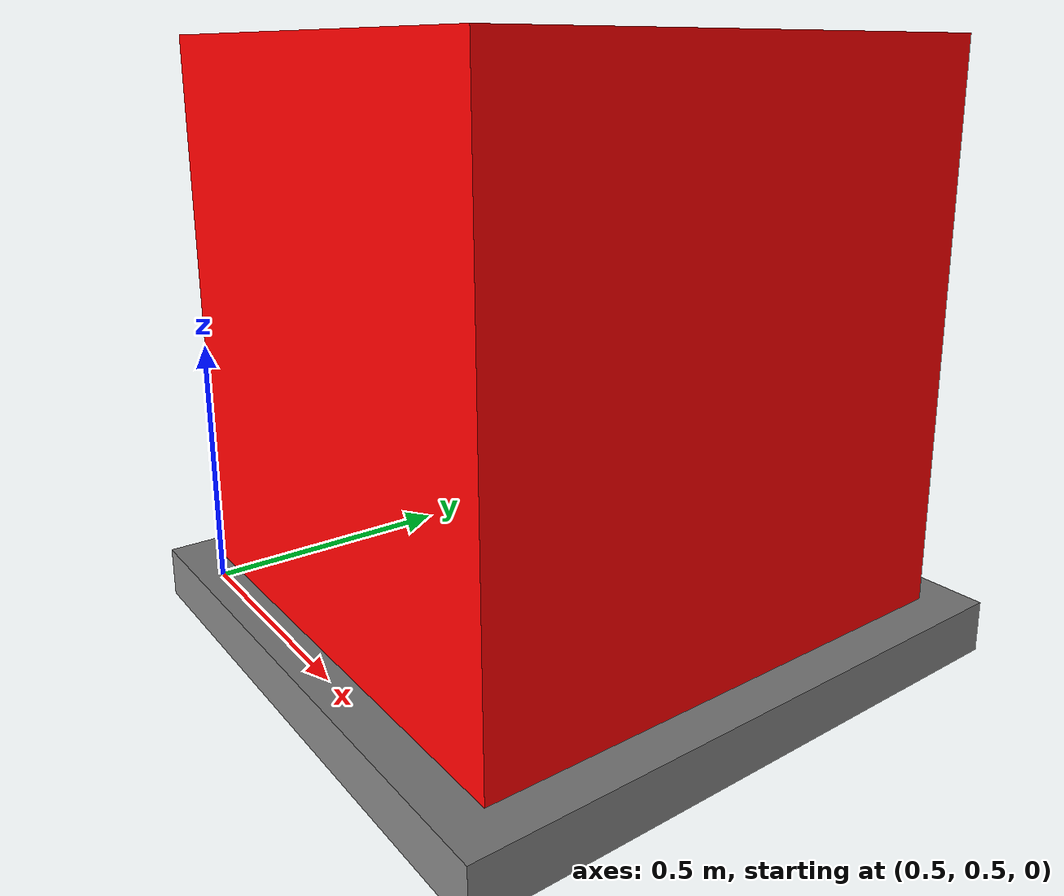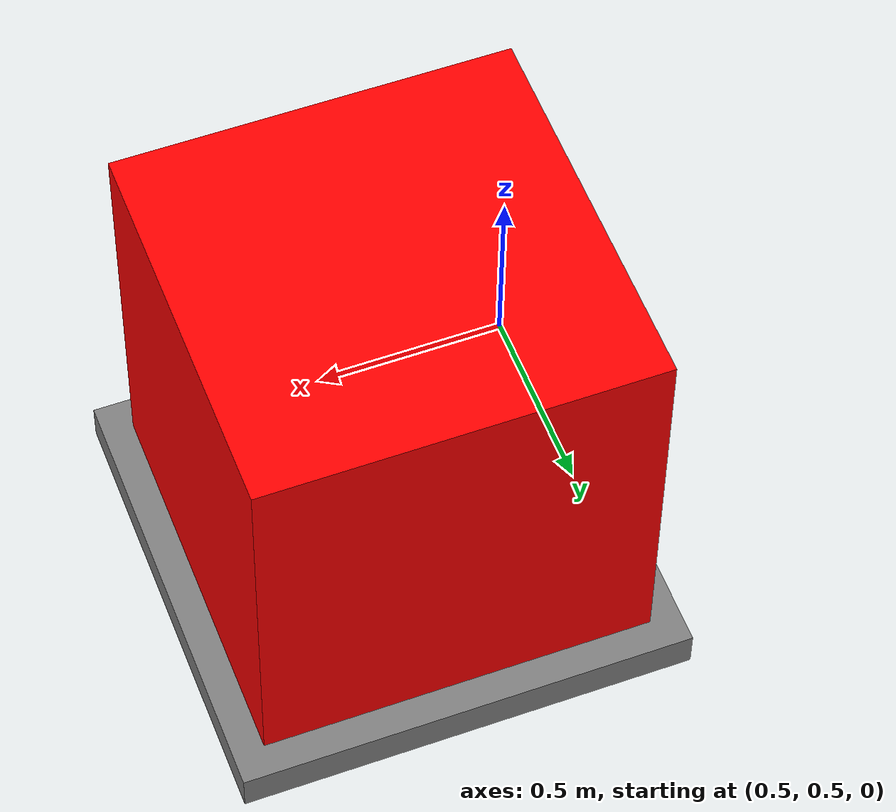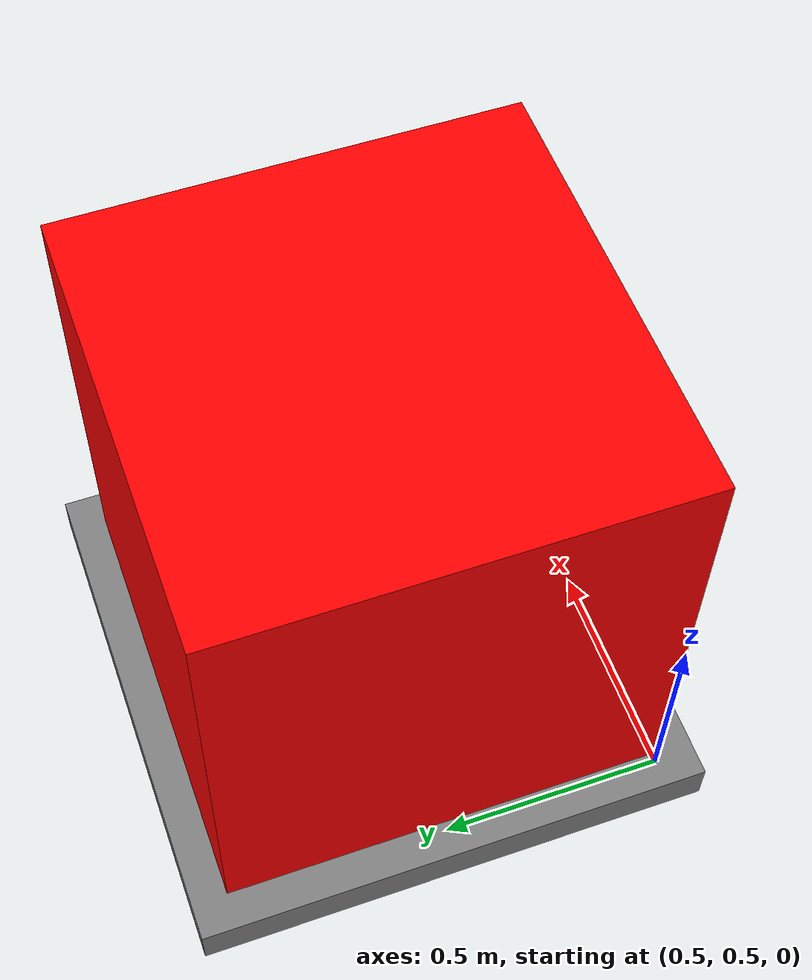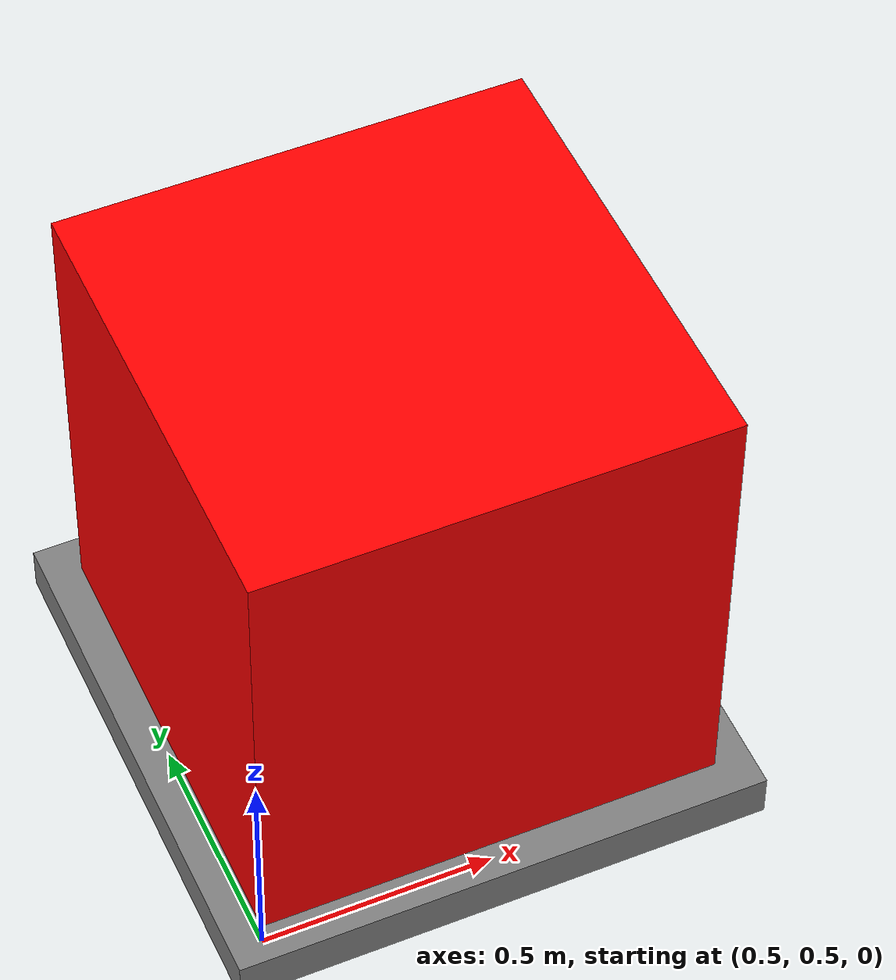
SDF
<sdf version="1.7">
  <world name="default">

    <!-- Physics and gravity -->
    <physics type="ode">
      <gravity>0 0 -9.8</gravity>
    </physics>

    <!-- Ánh sáng mặt trời -->
    <light name="sun" type="directional">
      <cast_shadows>true</cast_shadows>
      <pose>0 0 10 0 0 0</pose>
      <diffuse>1 1 1 1</diffuse>
      <specular>0.1 0.1 0.1 1</specular>
      <attenuation>
        <range>1000</range>
        <constant>0.9</constant>
        <linear>0.01</linear>
        <quadratic>0.001</quadratic>
      </attenuation>
      <direction>-0.5 0.5 -1</direction>
    </light>

    <!-- Mặt đất: hộp lớn mỏng -->
    <model name="custom_ground">
      <static>true</static>
      <link name="link">
        <collision name="collision">
          <geometry>
            <box>
              <size>200 200 0.1</size>
            </box>
          </geometry>
        </collision>
        <visual name="visual">
          <geometry>
            <box>
              <size>200 200 0.1</size>
            </box>
          </geometry>
          <material>
            <ambient>0.2 0.2 0.2 1</ambient>
            <diffuse>0.5 0.5 0.5 1</diffuse>
          </material>
        </visual>
      </link>
    </model>

    <!-- Chướng ngại vật -->
    <model name="obstacle_box">
      <static>true</static>
      <pose>1 1 0.55 0 0 0</pose> <!-- đặt trên mặt đất -->
      <link name="link">
        <collision name="collision">
          <geometry>
            <box>
              <size>1 1 1.1</size>
            </box>
          </geometry>
        </collision>
        <visual name="visual">
          <geometry>
            <box>
              <size>1 1 1.1</size>
            </box>
          </geometry>
          <material>
            <ambient>1 0 0 1</ambient>
            <diffuse>1 0 0 1</diffuse>
          </material>
        </visual>
      </link>
    </model>

  </world>
</sdf>
